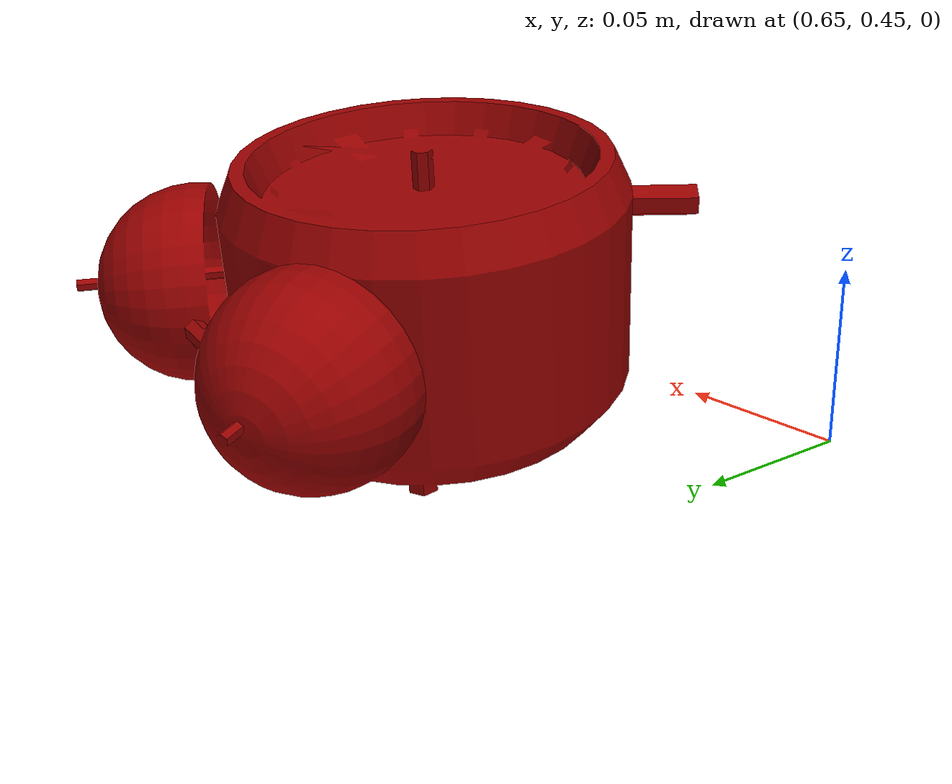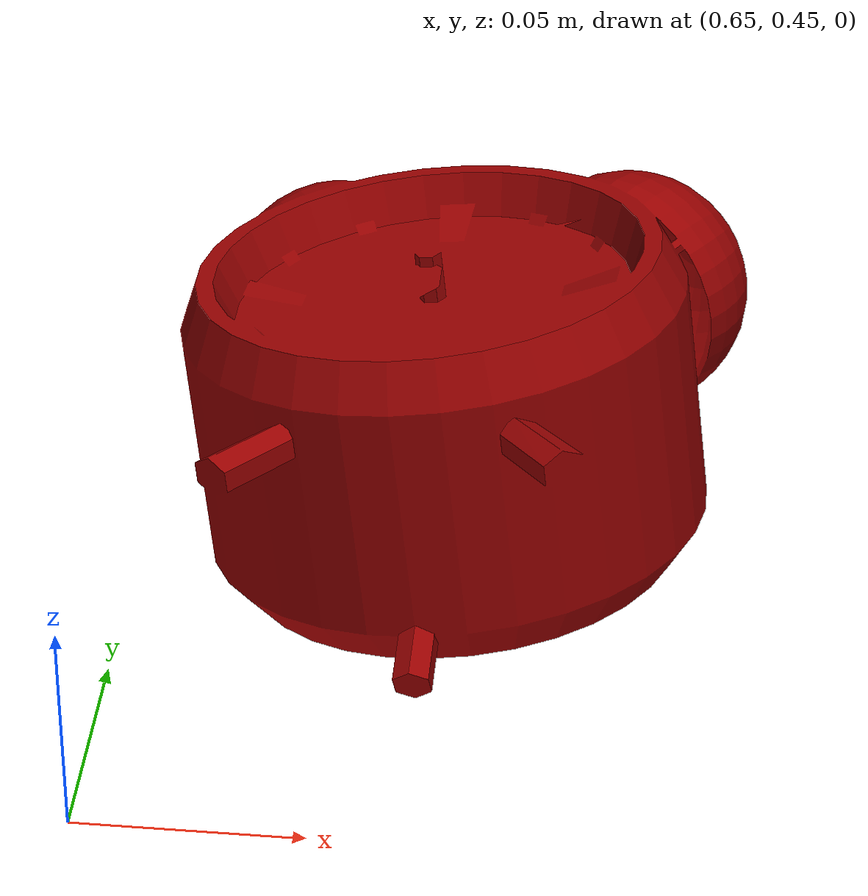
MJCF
<mujoco model="mesh_model">
        <asset>
            <mesh name="alarm_clock" file="alarm_clock.obj" scale = ".04 .04 .04"/>
        </asset>
        <worldbody>
            <body>
                <geom type="mesh" mesh="alarm_clock" contype="0" conaffinity="0" rgba="0.6 0 0 1" euler = "20 -30 0" pos="0.72 0.54 0.05"/>
            </body>
        </worldbody>
    </mujoco>
